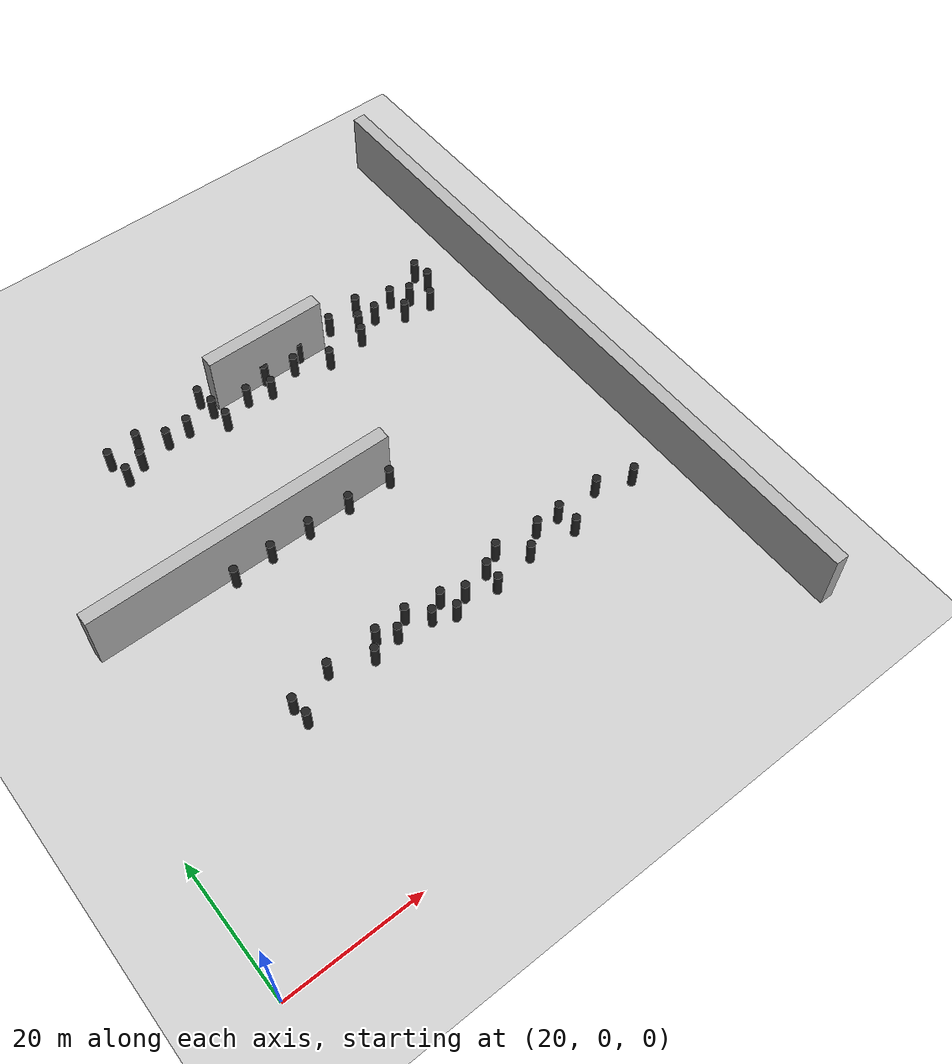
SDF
<sdf version="1.7">
 <world name="default">
  <model name="ground_plane">
   <pose>20 20 0 0 -0 0</pose>
   <static>1</static>
   <link name="link">
    <collision name="collision">
     <geometry><plane><normal>0 0 1</normal><size>200 200</size></plane></geometry>
     <surface><friction><ode><mu>100</mu><mu2>50</mu2></ode></friction></surface>
    </collision>
    <visual name="visual">
     <cast_shadows>0</cast_shadows>
     <geometry><plane><normal>0 0 1</normal><size>200 200</size></plane></geometry>
     <material>
      <script><uri>file://media/materials/scripts/gazebo.material</uri><name>Gazebo/Grey</name></script>
     </material>
    </visual>
   </link>
  </model>
  <model name="pillar_bottom_area_4">
   <static>1</static>
   <pose>57.1494 27.9983 0 0 -0 0</pose>
   <link name="link">
    <pose>0 0 2 0 -0 0</pose>
    <inertial>
     <mass>1</mass>
     <inertia><ixx>0.083</ixx><ixy>0</ixy><ixz>0</ixz><iyy>0.083</iyy><iyz>0</iyz><izz>0.083</izz></inertia>
    </inertial>
    <collision name="collision">
     <geometry><cylinder><radius>0.6</radius><length>4</length></cylinder></geometry>
    </collision>
    <visual name="visual">
     <geometry><cylinder><radius>0.6</radius><length>4</length></cylinder></geometry>
     <material>
      <script><uri>file://media/materials/scripts/gazebo.material</uri><name>Gazebo/Black</name></script>
     </material>
    </visual>
   </link>
  </model>
  <model name="pillar_bottom_area_5">
   <static>1</static>
   <pose>67.7017 27.4225 0 0 -0 0</pose>
   <link name="link">
    <pose>0 0 2 0 -0 0</pose>
    <inertial>
     <mass>1</mass>
     <inertia><ixx>0.083</ixx><ixy>0</ixy><ixz>0</ixz><iyy>0.083</iyy><iyz>0</iyz><izz>0.083</izz></inertia>
    </inertial>
    <collision name="collision">
     <geometry><cylinder><radius>0.6</radius><length>4</length></cylinder></geometry>
    </collision>
    <visual name="visual">
     <geometry><cylinder><radius>0.6</radius><length>4</length></cylinder></geometry>
     <material>
      <script><uri>file://media/materials/scripts/gazebo.material</uri><name>Gazebo/Black</name></script>
     </material>
    </visual>
   </link>
  </model>
  <model name="pillar_bottom_area_8">
   <static>1</static>
   <pose>59.5444 29.6801 0 0 -0 0</pose>
   <link name="link">
    <pose>0 0 2 0 -0 0</pose>
    <inertial>
     <mass>1</mass>
     <inertia><ixx>0.083</ixx><ixy>0</ixy><ixz>0</ixz><iyy>0.083</iyy><iyz>0</iyz><izz>0.083</izz></inertia>
    </inertial>
    <collision name="collision">
     <geometry><cylinder><radius>0.6</radius><length>4</length></cylinder></geometry>
    </collision>
    <visual name="visual">
     <geometry><cylinder><radius>0.6</radius><length>4</length></cylinder></geometry>
     <material>
      <script><uri>file://media/materials/scripts/gazebo.material</uri><name>Gazebo/Black</name></script>
     </material>
    </visual>
   </link>
  </model>
  <model name="pillar_bottom_area_12">
   <static>1</static>
   <pose>62.1408 27.3001 0 0 -0 0</pose>
   <link name="link">
    <pose>0 0 2 0 -0 0</pose>
    <inertial>
     <mass>1</mass>
     <inertia><ixx>0.083</ixx><ixy>0</ixy><ixz>0</ixz><iyy>0.083</iyy><iyz>0</iyz><izz>0.083</izz></inertia>
    </inertial>
    <collision name="collision">
     <geometry><cylinder><radius>0.6</radius><length>4</length></cylinder></geometry>
    </collision>
    <visual name="visual">
     <geometry><cylinder><radius>0.6</radius><length>4</length></cylinder></geometry>
     <material>
      <script><uri>file://media/materials/scripts/gazebo.material</uri><name>Gazebo/Black</name></script>
     </material>
    </visual>
   </link>
  </model>
  <model name="pillar_bottom_area_13">
   <static>1</static>
   <pose>65.0875 25.9205 0 0 -0 0</pose>
   <link name="link">
    <pose>0 0 2 0 -0 0</pose>
    <inertial>
     <mass>1</mass>
     <inertia><ixx>0.083</ixx><ixy>0</ixy><ixz>0</ixz><iyy>0.083</iyy><iyz>0</iyz><izz>0.083</izz></inertia>
    </inertial>
    <collision name="collision">
     <geometry><cylinder><radius>0.6</radius><length>4</length></cylinder></geometry>
    </collision>
    <visual name="visual">
     <geometry><cylinder><radius>0.6</radius><length>4</length></cylinder></geometry>
     <material>
      <script><uri>file://media/materials/scripts/gazebo.material</uri><name>Gazebo/Black</name></script>
     </material>
    </visual>
   </link>
  </model>
  <model name="pillar_bottom_area_14">
   <static>1</static>
   <pose>41.0472 28.1275 0 0 -0 0</pose>
   <link name="link">
    <pose>0 0 2 0 -0 0</pose>
    <inertial>
     <mass>1</mass>
     <inertia><ixx>0.083</ixx><ixy>0</ixy><ixz>0</ixz><iyy>0.083</iyy><iyz>0</iyz><izz>0.083</izz></inertia>
    </inertial>
    <collision name="collision">
     <geometry><cylinder><radius>0.6</radius><length>4</length></cylinder></geometry>
    </collision>
    <visual name="visual">
     <geometry><cylinder><radius>0.6</radius><length>4</length></cylinder></geometry>
     <material>
      <script><uri>file://media/materials/scripts/gazebo.material</uri><name>Gazebo/Black</name></script>
     </material>
    </visual>
   </link>
  </model>
  <model name="pillar_bottom_area_19">
   <static>1</static>
   <pose>74.7778 29.9178 0 0 -0 0</pose>
   <link name="link">
    <pose>0 0 2 0 -0 0</pose>
    <inertial>
     <mass>1</mass>
     <inertia><ixx>0.083</ixx><ixy>0</ixy><ixz>0</ixz><iyy>0.083</iyy><iyz>0</iyz><izz>0.083</izz></inertia>
    </inertial>
    <collision name="collision">
     <geometry><cylinder><radius>0.6</radius><length>4</length></cylinder></geometry>
    </collision>
    <visual name="visual">
     <geometry><cylinder><radius>0.6</radius><length>4</length></cylinder></geometry>
     <material>
      <script><uri>file://media/materials/scripts/gazebo.material</uri><name>Gazebo/Black</name></script>
     </material>
    </visual>
   </link>
  </model>
  <model name="pillar_bottom_area_22">
   <static>1</static>
   <pose>54.7502 29.4957 0 0 -0 0</pose>
   <link name="link">
    <pose>0 0 2 0 -0 0</pose>
    <inertial>
     <mass>1</mass>
     <inertia><ixx>0.083</ixx><ixy>0</ixy><ixz>0</ixz><iyy>0.083</iyy><iyz>0</iyz><izz>0.083</izz></inertia>
    </inertial>
    <collision name="collision">
     <geometry><cylinder><radius>0.6</radius><length>4</length></cylinder></geometry>
    </collision>
    <visual name="visual">
     <geometry><cylinder><radius>0.6</radius><length>4</length></cylinder></geometry>
     <material>
      <script><uri>file://media/materials/scripts/gazebo.material</uri><name>Gazebo/Black</name></script>
     </material>
    </visual>
   </link>
  </model>
  <model name="pillar_bottom_area_37">
   <static>1</static>
   <pose>78.3142 26.8641 0 0 -0 0</pose>
   <link name="link">
    <pose>0 0 2 0 -0 0</pose>
    <inertial>
     <mass>1</mass>
     <inertia><ixx>0.083</ixx><ixy>0</ixy><ixz>0</ixz><iyy>0.083</iyy><iyz>0</iyz><izz>0.083</izz></inertia>
    </inertial>
    <collision name="collision">
     <geometry><cylinder><radius>0.6</radius><length>4</length></cylinder></geometry>
    </collision>
    <visual name="visual">
     <geometry><cylinder><radius>0.6</radius><length>4</length></cylinder></geometry>
     <material>
      <script><uri>file://media/materials/scripts/gazebo.material</uri><name>Gazebo/Black</name></script>
     </material>
    </visual>
   </link>
  </model>
  <model name="pillar_bottom_area_40">
   <static>1</static>
   <pose>92.0125 29.4296 0 0 -0 0</pose>
   <link name="link">
    <pose>0 0 2 0 -0 0</pose>
    <inertial>
     <mass>1</mass>
     <inertia><ixx>0.083</ixx><ixy>0</ixy><ixz>0</ixz><iyy>0.083</iyy><iyz>0</iyz><izz>0.083</izz></inertia>
    </inertial>
    <collision name="collision">
     <geometry><cylinder><radius>0.6</radius><length>4</length></cylinder></geometry>
    </collision>
    <visual name="visual">
     <geometry><cylinder><radius>0.6</radius><length>4</length></cylinder></geometry>
     <material>
      <script><uri>file://media/materials/scripts/gazebo.material</uri><name>Gazebo/Black</name></script>
     </material>
    </visual>
   </link>
  </model>
  <model name="pillar_bottom_area_43">
   <static>1</static>
   <pose>41.3491 25.4908 0 0 -0 0</pose>
   <link name="link">
    <pose>0 0 2 0 -0 0</pose>
    <inertial>
     <mass>1</mass>
     <inertia><ixx>0.083</ixx><ixy>0</ixy><ixz>0</ixz><iyy>0.083</iyy><iyz>0</iyz><izz>0.083</izz></inertia>
    </inertial>
    <collision name="collision">
     <geometry><cylinder><radius>0.6</radius><length>4</length></cylinder></geometry>
    </collision>
    <visual name="visual">
     <geometry><cylinder><radius>0.6</radius><length>4</length></cylinder></geometry>
     <material>
      <script><uri>file://media/materials/scripts/gazebo.material</uri><name>Gazebo/Black</name></script>
     </material>
    </visual>
   </link>
  </model>
  <model name="pillar_bottom_area_63">
   <static>1</static>
   <pose>64.5591 28.748 0 0 -0 0</pose>
   <link name="link">
    <pose>0 0 2 0 -0 0</pose>
    <inertial>
     <mass>1</mass>
     <inertia><ixx>0.083</ixx><ixy>0</ixy><ixz>0</ixz><iyy>0.083</iyy><iyz>0</iyz><izz>0.083</izz></inertia>
    </inertial>
    <collision name="collision">
     <geometry><cylinder><radius>0.6</radius><length>4</length></cylinder></geometry>
    </collision>
    <visual name="visual">
     <geometry><cylinder><radius>0.6</radius><length>4</length></cylinder></geometry>
     <material>
      <script><uri>file://media/materials/scripts/gazebo.material</uri><name>Gazebo/Black</name></script>
     </material>
    </visual>
   </link>
  </model>
  <model name="pillar_bottom_area_132">
   <static>1</static>
   <pose>71.8502 25.8543 0 0 -0 0</pose>
   <link name="link">
    <pose>0 0 2 0 -0 0</pose>
    <inertial>
     <mass>1</mass>
     <inertia><ixx>0.083</ixx><ixy>0</ixy><ixz>0</ixz><iyy>0.083</iyy><iyz>0</iyz><izz>0.083</izz></inertia>
    </inertial>
    <collision name="collision">
     <geometry><cylinder><radius>0.6</radius><length>4</length></cylinder></geometry>
    </collision>
    <visual name="visual">
     <geometry><cylinder><radius>0.6</radius><length>4</length></cylinder></geometry>
     <material>
      <script><uri>file://media/materials/scripts/gazebo.material</uri><name>Gazebo/Black</name></script>
     </material>
    </visual>
   </link>
  </model>
  <model name="pillar_bottom_area_149">
   <static>1</static>
   <pose>85.2576 29.3545 0 0 -0 0</pose>
   <link name="link">
    <pose>0 0 2 0 -0 0</pose>
    <inertial>
     <mass>1</mass>
     <inertia><ixx>0.083</ixx><ixy>0</ixy><ixz>0</ixz><iyy>0.083</iyy><iyz>0</iyz><izz>0.083</izz></inertia>
    </inertial>
    <collision name="collision">
     <geometry><cylinder><radius>0.6</radius><length>4</length></cylinder></geometry>
    </collision>
    <visual name="visual">
     <geometry><cylinder><radius>0.6</radius><length>4</length></cylinder></geometry>
     <material>
      <script><uri>file://media/materials/scripts/gazebo.material</uri><name>Gazebo/Black</name></script>
     </material>
    </visual>
   </link>
  </model>
  <model name="pillar_bottom_area_152">
   <static>1</static>
   <pose>85.7271 26.3491 0 0 -0 0</pose>
   <link name="link">
    <pose>0 0 2 0 -0 0</pose>
    <inertial>
     <mass>1</mass>
     <inertia><ixx>0.083</ixx><ixy>0</ixy><ixz>0</ixz><iyy>0.083</iyy><iyz>0</iyz><izz>0.083</izz></inertia>
    </inertial>
    <collision name="collision">
     <geometry><cylinder><radius>0.6</radius><length>4</length></cylinder></geometry>
    </collision>
    <visual name="visual">
     <geometry><cylinder><radius>0.6</radius><length>4</length></cylinder></geometry>
     <material>
      <script><uri>file://media/materials/scripts/gazebo.material</uri><name>Gazebo/Black</name></script>
     </material>
    </visual>
   </link>
  </model>
  <model name="pillar_bottom_area_156">
   <static>1</static>
   <pose>72.0142 28.4259 0 0 -0 0</pose>
   <link name="link">
    <pose>0 0 2 0 -0 0</pose>
    <inertial>
     <mass>1</mass>
     <inertia><ixx>0.083</ixx><ixy>0</ixy><ixz>0</ixz><iyy>0.083</iyy><iyz>0</iyz><izz>0.083</izz></inertia>
    </inertial>
    <collision name="collision">
     <geometry><cylinder><radius>0.6</radius><length>4</length></cylinder></geometry>
    </collision>
    <visual name="visual">
     <geometry><cylinder><radius>0.6</radius><length>4</length></cylinder></geometry>
     <material>
      <script><uri>file://media/materials/scripts/gazebo.material</uri><name>Gazebo/Black</name></script>
     </material>
    </visual>
   </link>
  </model>
  <model name="pillar_bottom_area_178">
   <static>1</static>
   <pose>97.321 27.7005 0 0 -0 0</pose>
   <link name="link">
    <pose>0 0 2 0 -0 0</pose>
    <inertial>
     <mass>1</mass>
     <inertia><ixx>0.083</ixx><ixy>0</ixy><ixz>0</ixz><iyy>0.083</iyy><iyz>0</iyz><izz>0.083</izz></inertia>
    </inertial>
    <collision name="collision">
     <geometry><cylinder><radius>0.6</radius><length>4</length></cylinder></geometry>
    </collision>
    <visual name="visual">
     <geometry><cylinder><radius>0.6</radius><length>4</length></cylinder></geometry>
     <material>
      <script><uri>file://media/materials/scripts/gazebo.material</uri><name>Gazebo/Black</name></script>
     </material>
    </visual>
   </link>
  </model>
  <model name="pillar_bottom_area_192">
   <static>1</static>
   <pose>47.1785 29.3952 0 0 -0 0</pose>
   <link name="link">
    <pose>0 0 2 0 -0 0</pose>
    <inertial>
     <mass>1</mass>
     <inertia><ixx>0.083</ixx><ixy>0</ixy><ixz>0</ixz><iyy>0.083</iyy><iyz>0</iyz><izz>0.083</izz></inertia>
    </inertial>
    <collision name="collision">
     <geometry><cylinder><radius>0.6</radius><length>4</length></cylinder></geometry>
    </collision>
    <visual name="visual">
     <geometry><cylinder><radius>0.6</radius><length>4</length></cylinder></geometry>
     <material>
      <script><uri>file://media/materials/scripts/gazebo.material</uri><name>Gazebo/Black</name></script>
     </material>
    </visual>
   </link>
  </model>
  <model name="pillar_bottom_area_366">
   <static>1</static>
   <pose>81.3766 29.2702 0 0 -0 0</pose>
   <link name="link">
    <pose>0 0 2 0 -0 0</pose>
    <inertial>
     <mass>1</mass>
     <inertia><ixx>0.083</ixx><ixy>0</ixy><ixz>0</ixz><iyy>0.083</iyy><iyz>0</iyz><izz>0.083</izz></inertia>
    </inertial>
    <collision name="collision">
     <geometry><cylinder><radius>0.6</radius><length>4</length></cylinder></geometry>
    </collision>
    <visual name="visual">
     <geometry><cylinder><radius>0.6</radius><length>4</length></cylinder></geometry>
     <material>
      <script><uri>file://media/materials/scripts/gazebo.material</uri><name>Gazebo/Black</name></script>
     </material>
    </visual>
   </link>
  </model>
  <model name="pillar_bottom_area_393">
   <static>1</static>
   <pose>53.0768 27.3304 0 0 -0 0</pose>
   <link name="link">
    <pose>0 0 2 0 -0 0</pose>
    <inertial>
     <mass>1</mass>
     <inertia><ixx>0.083</ixx><ixy>0</ixy><ixz>0</ixz><iyy>0.083</iyy><iyz>0</iyz><izz>0.083</izz></inertia>
    </inertial>
    <collision name="collision">
     <geometry><cylinder><radius>0.6</radius><length>4</length></cylinder></geometry>
    </collision>
    <visual name="visual">
     <geometry><cylinder><radius>0.6</radius><length>4</length></cylinder></geometry>
     <material>
      <script><uri>file://media/materials/scripts/gazebo.material</uri><name>Gazebo/Black</name></script>
     </material>
    </visual>
   </link>
  </model>
  <model name="pillar_top_area_1">
   <static>1</static>
   <pose>62.9289 75.0617 0 0 -0 0</pose>
   <link name="link">
    <pose>0 0 2 0 -0 0</pose>
    <inertial>
     <mass>1</mass>
     <inertia><ixx>0.083</ixx><ixy>0</ixy><ixz>0</ixz><iyy>0.083</iyy><iyz>0</iyz><izz>0.083</izz></inertia>
    </inertial>
    <collision name="collision">
     <geometry><cylinder><radius>0.6</radius><length>4</length></cylinder></geometry>
    </collision>
    <visual name="visual">
     <geometry><cylinder><radius>0.6</radius><length>4</length></cylinder></geometry>
     <material>
      <script><uri>file://media/materials/scripts/gazebo.material</uri><name>Gazebo/Black</name></script>
     </material>
    </visual>
   </link>
  </model>
  <model name="pillar_top_area_3">
   <static>1</static>
   <pose>90.3147 74.2898 0 0 -0 0</pose>
   <link name="link">
    <pose>0 0 2 0 -0 0</pose>
    <inertial>
     <mass>1</mass>
     <inertia><ixx>0.083</ixx><ixy>0</ixy><ixz>0</ixz><iyy>0.083</iyy><iyz>0</iyz><izz>0.083</izz></inertia>
    </inertial>
    <collision name="collision">
     <geometry><cylinder><radius>0.6</radius><length>4</length></cylinder></geometry>
    </collision>
    <visual name="visual">
     <geometry><cylinder><radius>0.6</radius><length>4</length></cylinder></geometry>
     <material>
      <script><uri>file://media/materials/scripts/gazebo.material</uri><name>Gazebo/Black</name></script>
     </material>
    </visual>
   </link>
  </model>
  <model name="pillar_top_area_8">
   <static>1</static>
   <pose>92.9955 72.983 0 0 -0 0</pose>
   <link name="link">
    <pose>0 0 2 0 -0 0</pose>
    <inertial>
     <mass>1</mass>
     <inertia><ixx>0.083</ixx><ixy>0</ixy><ixz>0</ixz><iyy>0.083</iyy><iyz>0</iyz><izz>0.083</izz></inertia>
    </inertial>
    <collision name="collision">
     <geometry><cylinder><radius>0.6</radius><length>4</length></cylinder></geometry>
    </collision>
    <visual name="visual">
     <geometry><cylinder><radius>0.6</radius><length>4</length></cylinder></geometry>
     <material>
      <script><uri>file://media/materials/scripts/gazebo.material</uri><name>Gazebo/Black</name></script>
     </material>
    </visual>
   </link>
  </model>
  <model name="pillar_top_area_10">
   <static>1</static>
   <pose>82.592 70.9768 0 0 -0 0</pose>
   <link name="link">
    <pose>0 0 2 0 -0 0</pose>
    <inertial>
     <mass>1</mass>
     <inertia><ixx>0.083</ixx><ixy>0</ixy><ixz>0</ixz><iyy>0.083</iyy><iyz>0</iyz><izz>0.083</izz></inertia>
    </inertial>
    <collision name="collision">
     <geometry><cylinder><radius>0.6</radius><length>4</length></cylinder></geometry>
    </collision>
    <visual name="visual">
     <geometry><cylinder><radius>0.6</radius><length>4</length></cylinder></geometry>
     <material>
      <script><uri>file://media/materials/scripts/gazebo.material</uri><name>Gazebo/Black</name></script>
     </material>
    </visual>
   </link>
  </model>
  <model name="pillar_top_area_31">
   <static>1</static>
   <pose>41.952 74.3247 0 0 -0 0</pose>
   <link name="link">
    <pose>0 0 2 0 -0 0</pose>
    <inertial>
     <mass>1</mass>
     <inertia><ixx>0.083</ixx><ixy>0</ixy><ixz>0</ixz><iyy>0.083</iyy><iyz>0</iyz><izz>0.083</izz></inertia>
    </inertial>
    <collision name="collision">
     <geometry><cylinder><radius>0.6</radius><length>4</length></cylinder></geometry>
    </collision>
    <visual name="visual">
     <geometry><cylinder><radius>0.6</radius><length>4</length></cylinder></geometry>
     <material>
      <script><uri>file://media/materials/scripts/gazebo.material</uri><name>Gazebo/Black</name></script>
     </material>
    </visual>
   </link>
  </model>
  <model name="pillar_top_area_45">
   <static>1</static>
   <pose>66.6789 71.0093 0 0 -0 0</pose>
   <link name="link">
    <pose>0 0 2 0 -0 0</pose>
    <inertial>
     <mass>1</mass>
     <inertia><ixx>0.083</ixx><ixy>0</ixy><ixz>0</ixz><iyy>0.083</iyy><iyz>0</iyz><izz>0.083</izz></inertia>
    </inertial>
    <collision name="collision">
     <geometry><cylinder><radius>0.6</radius><length>4</length></cylinder></geometry>
    </collision>
    <visual name="visual">
     <geometry><cylinder><radius>0.6</radius><length>4</length></cylinder></geometry>
     <material>
      <script><uri>file://media/materials/scripts/gazebo.material</uri><name>Gazebo/Black</name></script>
     </material>
    </visual>
   </link>
  </model>
  <model name="pillar_top_area_49">
   <static>1</static>
   <pose>86.6059 73.1555 0 0 -0 0</pose>
   <link name="link">
    <pose>0 0 2 0 -0 0</pose>
    <inertial>
     <mass>1</mass>
     <inertia><ixx>0.083</ixx><ixy>0</ixy><ixz>0</ixz><iyy>0.083</iyy><iyz>0</iyz><izz>0.083</izz></inertia>
    </inertial>
    <collision name="collision">
     <geometry><cylinder><radius>0.6</radius><length>4</length></cylinder></geometry>
    </collision>
    <visual name="visual">
     <geometry><cylinder><radius>0.6</radius><length>4</length></cylinder></geometry>
     <material>
      <script><uri>file://media/materials/scripts/gazebo.material</uri><name>Gazebo/Black</name></script>
     </material>
    </visual>
   </link>
  </model>
  <model name="pillar_top_area_55">
   <static>1</static>
   <pose>46.5954 74.7679 0 0 -0 0</pose>
   <link name="link">
    <pose>0 0 2 0 -0 0</pose>
    <inertial>
     <mass>1</mass>
     <inertia><ixx>0.083</ixx><ixy>0</ixy><ixz>0</ixz><iyy>0.083</iyy><iyz>0</iyz><izz>0.083</izz></inertia>
    </inertial>
    <collision name="collision">
     <geometry><cylinder><radius>0.6</radius><length>4</length></cylinder></geometry>
    </collision>
    <visual name="visual">
     <geometry><cylinder><radius>0.6</radius><length>4</length></cylinder></geometry>
     <material>
      <script><uri>file://media/materials/scripts/gazebo.material</uri><name>Gazebo/Black</name></script>
     </material>
    </visual>
   </link>
  </model>
  <model name="pillar_top_area_60">
   <static>1</static>
   <pose>96.882 73.6087 0 0 -0 0</pose>
   <link name="link">
    <pose>0 0 2 0 -0 0</pose>
    <inertial>
     <mass>1</mass>
     <inertia><ixx>0.083</ixx><ixy>0</ixy><ixz>0</ixz><iyy>0.083</iyy><iyz>0</iyz><izz>0.083</izz></inertia>
    </inertial>
    <collision name="collision">
     <geometry><cylinder><radius>0.6</radius><length>4</length></cylinder></geometry>
    </collision>
    <visual name="visual">
     <geometry><cylinder><radius>0.6</radius><length>4</length></cylinder></geometry>
     <material>
      <script><uri>file://media/materials/scripts/gazebo.material</uri><name>Gazebo/Black</name></script>
     </material>
    </visual>
   </link>
  </model>
  <model name="pillar_top_area_62">
   <static>1</static>
   <pose>42.5903 70.574 0 0 -0 0</pose>
   <link name="link">
    <pose>0 0 2 0 -0 0</pose>
    <inertial>
     <mass>1</mass>
     <inertia><ixx>0.083</ixx><ixy>0</ixy><ixz>0</ixz><iyy>0.083</iyy><iyz>0</iyz><izz>0.083</izz></inertia>
    </inertial>
    <collision name="collision">
     <geometry><cylinder><radius>0.6</radius><length>4</length></cylinder></geometry>
    </collision>
    <visual name="visual">
     <geometry><cylinder><radius>0.6</radius><length>4</length></cylinder></geometry>
     <material>
      <script><uri>file://media/materials/scripts/gazebo.material</uri><name>Gazebo/Black</name></script>
     </material>
    </visual>
   </link>
  </model>
  <model name="pillar_top_area_68">
   <static>1</static>
   <pose>71.0495 75.7869 0 0 -0 0</pose>
   <link name="link">
    <pose>0 0 2 0 -0 0</pose>
    <inertial>
     <mass>1</mass>
     <inertia><ixx>0.083</ixx><ixy>0</ixy><ixz>0</ixz><iyy>0.083</iyy><iyz>0</iyz><izz>0.083</izz></inertia>
    </inertial>
    <collision name="collision">
     <geometry><cylinder><radius>0.6</radius><length>4</length></cylinder></geometry>
    </collision>
    <visual name="visual">
     <geometry><cylinder><radius>0.6</radius><length>4</length></cylinder></geometry>
     <material>
      <script><uri>file://media/materials/scripts/gazebo.material</uri><name>Gazebo/Black</name></script>
     </material>
    </visual>
   </link>
  </model>
  <model name="pillar_top_area_69">
   <static>1</static>
   <pose>50.1479 72.5195 0 0 -0 0</pose>
   <link name="link">
    <pose>0 0 2 0 -0 0</pose>
    <inertial>
     <mass>1</mass>
     <inertia><ixx>0.083</ixx><ixy>0</ixy><ixz>0</ixz><iyy>0.083</iyy><iyz>0</iyz><izz>0.083</izz></inertia>
    </inertial>
    <collision name="collision">
     <geometry><cylinder><radius>0.6</radius><length>4</length></cylinder></geometry>
    </collision>
    <visual name="visual">
     <geometry><cylinder><radius>0.6</radius><length>4</length></cylinder></geometry>
     <material>
      <script><uri>file://media/materials/scripts/gazebo.material</uri><name>Gazebo/Black</name></script>
     </material>
    </visual>
   </link>
  </model>
  <model name="pillar_top_area_81">
   <static>1</static>
   <pose>58.0718 73.2441 0 0 -0 0</pose>
   <link name="link">
    <pose>0 0 2 0 -0 0</pose>
    <inertial>
     <mass>1</mass>
     <inertia><ixx>0.083</ixx><ixy>0</ixy><ixz>0</ixz><iyy>0.083</iyy><iyz>0</iyz><izz>0.083</izz></inertia>
    </inertial>
    <collision name="collision">
     <geometry><cylinder><radius>0.6</radius><length>4</length></cylinder></geometry>
    </collision>
    <visual name="visual">
     <geometry><cylinder><radius>0.6</radius><length>4</length></cylinder></geometry>
     <material>
      <script><uri>file://media/materials/scripts/gazebo.material</uri><name>Gazebo/Black</name></script>
     </material>
    </visual>
   </link>
  </model>
  <model name="pillar_top_area_82">
   <static>1</static>
   <pose>71.5368 72.4441 0 0 -0 0</pose>
   <link name="link">
    <pose>0 0 2 0 -0 0</pose>
    <inertial>
     <mass>1</mass>
     <inertia><ixx>0.083</ixx><ixy>0</ixy><ixz>0</ixz><iyy>0.083</iyy><iyz>0</iyz><izz>0.083</izz></inertia>
    </inertial>
    <collision name="collision">
     <geometry><cylinder><radius>0.6</radius><length>4</length></cylinder></geometry>
    </collision>
    <visual name="visual">
     <geometry><cylinder><radius>0.6</radius><length>4</length></cylinder></geometry>
     <material>
      <script><uri>file://media/materials/scripts/gazebo.material</uri><name>Gazebo/Black</name></script>
     </material>
    </visual>
   </link>
  </model>
  <model name="pillar_top_area_91">
   <static>1</static>
   <pose>73.498 74.1207 0 0 -0 0</pose>
   <link name="link">
    <pose>0 0 2 0 -0 0</pose>
    <inertial>
     <mass>1</mass>
     <inertia><ixx>0.083</ixx><ixy>0</ixy><ixz>0</ixz><iyy>0.083</iyy><iyz>0</iyz><izz>0.083</izz></inertia>
    </inertial>
    <collision name="collision">
     <geometry><cylinder><radius>0.6</radius><length>4</length></cylinder></geometry>
    </collision>
    <visual name="visual">
     <geometry><cylinder><radius>0.6</radius><length>4</length></cylinder></geometry>
     <material>
      <script><uri>file://media/materials/scripts/gazebo.material</uri><name>Gazebo/Black</name></script>
     </material>
    </visual>
   </link>
  </model>
  <model name="pillar_top_area_112">
   <static>1</static>
   <pose>83.7453 73.3069 0 0 -0 0</pose>
   <link name="link">
    <pose>0 0 2 0 -0 0</pose>
    <inertial>
     <mass>1</mass>
     <inertia><ixx>0.083</ixx><ixy>0</ixy><ixz>0</ixz><iyy>0.083</iyy><iyz>0</iyz><izz>0.083</izz></inertia>
    </inertial>
    <collision name="collision">
     <geometry><cylinder><radius>0.6</radius><length>4</length></cylinder></geometry>
    </collision>
    <visual name="visual">
     <geometry><cylinder><radius>0.6</radius><length>4</length></cylinder></geometry>
     <material>
      <script><uri>file://media/materials/scripts/gazebo.material</uri><name>Gazebo/Black</name></script>
     </material>
    </visual>
   </link>
  </model>
  <model name="pillar_top_area_119">
   <static>1</static>
   <pose>80.002 75.5143 0 0 -0 0</pose>
   <link name="link">
    <pose>0 0 2 0 -0 0</pose>
    <inertial>
     <mass>1</mass>
     <inertia><ixx>0.083</ixx><ixy>0</ixy><ixz>0</ixz><iyy>0.083</iyy><iyz>0</iyz><izz>0.083</izz></inertia>
    </inertial>
    <collision name="collision">
     <geometry><cylinder><radius>0.6</radius><length>4</length></cylinder></geometry>
    </collision>
    <visual name="visual">
     <geometry><cylinder><radius>0.6</radius><length>4</length></cylinder></geometry>
     <material>
      <script><uri>file://media/materials/scripts/gazebo.material</uri><name>Gazebo/Black</name></script>
     </material>
    </visual>
   </link>
  </model>
  <model name="pillar_top_area_128">
   <static>1</static>
   <pose>45.4418 71.6328 0 0 -0 0</pose>
   <link name="link">
    <pose>0 0 2 0 -0 0</pose>
    <inertial>
     <mass>1</mass>
     <inertia><ixx>0.083</ixx><ixy>0</ixy><ixz>0</ixz><iyy>0.083</iyy><iyz>0</iyz><izz>0.083</izz></inertia>
    </inertial>
    <collision name="collision">
     <geometry><cylinder><radius>0.6</radius><length>4</length></cylinder></geometry>
    </collision>
    <visual name="visual">
     <geometry><cylinder><radius>0.6</radius><length>4</length></cylinder></geometry>
     <material>
      <script><uri>file://media/materials/scripts/gazebo.material</uri><name>Gazebo/Black</name></script>
     </material>
    </visual>
   </link>
  </model>
  <model name="pillar_top_area_143">
   <static>1</static>
   <pose>63.0984 71.9167 0 0 -0 0</pose>
   <link name="link">
    <pose>0 0 2 0 -0 0</pose>
    <inertial>
     <mass>1</mass>
     <inertia><ixx>0.083</ixx><ixy>0</ixy><ixz>0</ixz><iyy>0.083</iyy><iyz>0</iyz><izz>0.083</izz></inertia>
    </inertial>
    <collision name="collision">
     <geometry><cylinder><radius>0.6</radius><length>4</length></cylinder></geometry>
    </collision>
    <visual name="visual">
     <geometry><cylinder><radius>0.6</radius><length>4</length></cylinder></geometry>
     <material>
      <script><uri>file://media/materials/scripts/gazebo.material</uri><name>Gazebo/Black</name></script>
     </material>
    </visual>
   </link>
  </model>
  <model name="pillar_top_area_179">
   <static>1</static>
   <pose>85.246 76.1206 0 0 -0 0</pose>
   <link name="link">
    <pose>0 0 2 0 -0 0</pose>
    <inertial>
     <mass>1</mass>
     <inertia><ixx>0.083</ixx><ixy>0</ixy><ixz>0</ixz><iyy>0.083</iyy><iyz>0</iyz><izz>0.083</izz></inertia>
    </inertial>
    <collision name="collision">
     <geometry><cylinder><radius>0.6</radius><length>4</length></cylinder></geometry>
    </collision>
    <visual name="visual">
     <geometry><cylinder><radius>0.6</radius><length>4</length></cylinder></geometry>
     <material>
      <script><uri>file://media/materials/scripts/gazebo.material</uri><name>Gazebo/Black</name></script>
     </material>
    </visual>
   </link>
  </model>
  <model name="pillar_top_area_227">
   <static>1</static>
   <pose>58.4786 70.1385 0 0 -0 0</pose>
   <link name="link">
    <pose>0 0 2 0 -0 0</pose>
    <inertial>
     <mass>1</mass>
     <inertia><ixx>0.083</ixx><ixy>0</ixy><ixz>0</ixz><iyy>0.083</iyy><iyz>0</iyz><izz>0.083</izz></inertia>
    </inertial>
    <collision name="collision">
     <geometry><cylinder><radius>0.6</radius><length>4</length></cylinder></geometry>
    </collision>
    <visual name="visual">
     <geometry><cylinder><radius>0.6</radius><length>4</length></cylinder></geometry>
     <material>
      <script><uri>file://media/materials/scripts/gazebo.material</uri><name>Gazebo/Black</name></script>
     </material>
    </visual>
   </link>
  </model>
  <model name="pillar_top_area_228">
   <static>1</static>
   <pose>53.5376 72.5571 0 0 -0 0</pose>
   <link name="link">
    <pose>0 0 2 0 -0 0</pose>
    <inertial>
     <mass>1</mass>
     <inertia><ixx>0.083</ixx><ixy>0</ixy><ixz>0</ixz><iyy>0.083</iyy><iyz>0</iyz><izz>0.083</izz></inertia>
    </inertial>
    <collision name="collision">
     <geometry><cylinder><radius>0.6</radius><length>4</length></cylinder></geometry>
    </collision>
    <visual name="visual">
     <geometry><cylinder><radius>0.6</radius><length>4</length></cylinder></geometry>
     <material>
      <script><uri>file://media/materials/scripts/gazebo.material</uri><name>Gazebo/Black</name></script>
     </material>
    </visual>
   </link>
  </model>
  <model name="pillar_top_area_232">
   <static>1</static>
   <pose>67.2763 73.6833 0 0 -0 0</pose>
   <link name="link">
    <pose>0 0 2 0 -0 0</pose>
    <inertial>
     <mass>1</mass>
     <inertia><ixx>0.083</ixx><ixy>0</ixy><ixz>0</ixz><iyy>0.083</iyy><iyz>0</iyz><izz>0.083</izz></inertia>
    </inertial>
    <collision name="collision">
     <geometry><cylinder><radius>0.6</radius><length>4</length></cylinder></geometry>
    </collision>
    <visual name="visual">
     <geometry><cylinder><radius>0.6</radius><length>4</length></cylinder></geometry>
     <material>
      <script><uri>file://media/materials/scripts/gazebo.material</uri><name>Gazebo/Black</name></script>
     </material>
    </visual>
   </link>
  </model>
  <model name="pillar_top_area_318">
   <static>1</static>
   <pose>57.5137 75.9527 0 0 -0 0</pose>
   <link name="link">
    <pose>0 0 2 0 -0 0</pose>
    <inertial>
     <mass>1</mass>
     <inertia><ixx>0.083</ixx><ixy>0</ixy><ixz>0</ixz><iyy>0.083</iyy><iyz>0</iyz><izz>0.083</izz></inertia>
    </inertial>
    <collision name="collision">
     <geometry><cylinder><radius>0.6</radius><length>4</length></cylinder></geometry>
    </collision>
    <visual name="visual">
     <geometry><cylinder><radius>0.6</radius><length>4</length></cylinder></geometry>
     <material>
      <script><uri>file://media/materials/scripts/gazebo.material</uri><name>Gazebo/Black</name></script>
     </material>
    </visual>
   </link>
  </model>
  <model name="pillar_top_area_328">
   <static>1</static>
   <pose>96.4341 76.2415 0 0 -0 0</pose>
   <link name="link">
    <pose>0 0 2 0 -0 0</pose>
    <inertial>
     <mass>1</mass>
     <inertia><ixx>0.083</ixx><ixy>0</ixy><ixz>0</ixz><iyy>0.083</iyy><iyz>0</iyz><izz>0.083</izz></inertia>
    </inertial>
    <collision name="collision">
     <geometry><cylinder><radius>0.6</radius><length>4</length></cylinder></geometry>
    </collision>
    <visual name="visual">
     <geometry><cylinder><radius>0.6</radius><length>4</length></cylinder></geometry>
     <material>
      <script><uri>file://media/materials/scripts/gazebo.material</uri><name>Gazebo/Black</name></script>
     </material>
    </visual>
   </link>
  </model>
  <model name="pillar_top_area_356">
   <static>1</static>
   <pose>76.4129 70.2861 0 0 -0 0</pose>
   <link name="link">
    <pose>0 0 2 0 -0 0</pose>
    <inertial>
     <mass>1</mass>
     <inertia><ixx>0.083</ixx><ixy>0</ixy><ixz>0</ixz><iyy>0.083</iyy><iyz>0</iyz><izz>0.083</izz></inertia>
    </inertial>
    <collision name="collision">
     <geometry><cylinder><radius>0.6</radius><length>4</length></cylinder></geometry>
    </collision>
    <visual name="visual">
     <geometry><cylinder><radius>0.6</radius><length>4</length></cylinder></geometry>
     <material>
      <script><uri>file://media/materials/scripts/gazebo.material</uri><name>Gazebo/Black</name></script>
     </material>
    </visual>
   </link>
  </model>
  <model name="pillar_top_area_376">
   <static>1</static>
   <pose>90.4559 70.8229 0 0 -0 0</pose>
   <link name="link">
    <pose>0 0 2 0 -0 0</pose>
    <inertial>
     <mass>1</mass>
     <inertia><ixx>0.083</ixx><ixy>0</ixy><ixz>0</ixz><iyy>0.083</iyy><iyz>0</iyz><izz>0.083</izz></inertia>
    </inertial>
    <collision name="collision">
     <geometry><cylinder><radius>0.6</radius><length>4</length></cylinder></geometry>
    </collision>
    <visual name="visual">
     <geometry><cylinder><radius>0.6</radius><length>4</length></cylinder></geometry>
     <material>
      <script><uri>file://media/materials/scripts/gazebo.material</uri><name>Gazebo/Black</name></script>
     </material>
    </visual>
   </link>
  </model>
  <model name="pillar_top_area_392">
   <static>1</static>
   <pose>94.8839 70.3471 0 0 -0 0</pose>
   <link name="link">
    <pose>0 0 2 0 -0 0</pose>
    <inertial>
     <mass>1</mass>
     <inertia><ixx>0.083</ixx><ixy>0</ixy><ixz>0</ixz><iyy>0.083</iyy><iyz>0</iyz><izz>0.083</izz></inertia>
    </inertial>
    <collision name="collision">
     <geometry><cylinder><radius>0.6</radius><length>4</length></cylinder></geometry>
    </collision>
    <visual name="visual">
     <geometry><cylinder><radius>0.6</radius><length>4</length></cylinder></geometry>
     <material>
      <script><uri>file://media/materials/scripts/gazebo.material</uri><name>Gazebo/Black</name></script>
     </material>
    </visual>
   </link>
  </model>
  <model name="center_wall_clone_0_clone_6">
   <static>1</static>
   <pose>68.5153 74.7409 5.00499 0 -0 0</pose>
   <link name="link">
    <collision name="collision"><geometry><box><size>18.5054 2 10</size></box></geometry></collision>
    <visual name="visual">
     <geometry><box><size>18.5054 2 10</size></box></geometry>
     <material>
      <ambient>0.6 0.6 0.6 1</ambient>
      <diffuse>0.7 0.7 0.7 1</diffuse>
      <specular>0.2 0.2 0.2 1</specular>
     </material>
    </visual>
   </link>
  </model>
  <model name="pillar_top_area_62_clone_2">
   <static>1</static>
   <pose>45.6246 51.7342 0 0 -0 0</pose>
   <link name="link">
    <pose>0 0 2 0 -0 0</pose>
    <inertial>
     <mass>1</mass>
     <inertia><ixx>0.083</ixx><ixy>0</ixy><ixz>0</ixz><iyy>0.083</iyy><iyz>0</iyz><izz>0.083</izz></inertia>
    </inertial>
    <collision name="collision">
     <geometry><cylinder><radius>0.6</radius><length>4</length></cylinder></geometry>
    </collision>
    <visual name="visual">
     <geometry><cylinder><radius>0.6</radius><length>4</length></cylinder></geometry>
     <material>
      <script><uri>file://media/materials/scripts/gazebo.material</uri><name>Gazebo/Black</name></script>
     </material>
    </visual>
   </link>
  </model>
  <model name="pillar_top_area_62_clone_3">
   <static>1</static>
   <pose>51.3603 51.6309 0 0 -0 0</pose>
   <link name="link">
    <pose>0 0 2 0 -0 0</pose>
    <inertial>
     <mass>1</mass>
     <inertia><ixx>0.083</ixx><ixy>0</ixy><ixz>0</ixz><iyy>0.083</iyy><iyz>0</iyz><izz>0.083</izz></inertia>
    </inertial>
    <collision name="collision">
     <geometry><cylinder><radius>0.6</radius><length>4</length></cylinder></geometry>
    </collision>
    <visual name="visual">
     <geometry><cylinder><radius>0.6</radius><length>4</length></cylinder></geometry>
     <material>
      <script><uri>file://media/materials/scripts/gazebo.material</uri><name>Gazebo/Black</name></script>
     </material>
    </visual>
   </link>
  </model>
  <model name="pillar_top_area_62_clone_4">
   <static>1</static>
   <pose>57.1779 51.6293 0 0 -0 0</pose>
   <link name="link">
    <pose>0 0 2 0 -0 0</pose>
    <inertial>
     <mass>1</mass>
     <inertia><ixx>0.083</ixx><ixy>0</ixy><ixz>0</ixz><iyy>0.083</iyy><iyz>0</iyz><izz>0.083</izz></inertia>
    </inertial>
    <collision name="collision">
     <geometry><cylinder><radius>0.6</radius><length>4</length></cylinder></geometry>
    </collision>
    <visual name="visual">
     <geometry><cylinder><radius>0.6</radius><length>4</length></cylinder></geometry>
     <material>
      <script><uri>file://media/materials/scripts/gazebo.material</uri><name>Gazebo/Black</name></script>
     </material>
    </visual>
   </link>
  </model>
  <model name="pillar_top_area_62_clone_5">
   <static>1</static>
   <pose>63.6592 51.8453 0 0 -0 0</pose>
   <link name="link">
    <pose>0 0 2 0 -0 0</pose>
    <inertial>
     <mass>1</mass>
     <inertia><ixx>0.083</ixx><ixy>0</ixy><ixz>0</ixz><iyy>0.083</iyy><iyz>0</iyz><izz>0.083</izz></inertia>
    </inertial>
    <collision name="collision">
     <geometry><cylinder><radius>0.6</radius><length>4</length></cylinder></geometry>
    </collision>
    <visual name="visual">
     <geometry><cylinder><radius>0.6</radius><length>4</length></cylinder></geometry>
     <material>
      <script><uri>file://media/materials/scripts/gazebo.material</uri><name>Gazebo/Black</name></script>
     </material>
    </visual>
   </link>
  </model>
  <model name="pillar_top_area_62_clone_6">
   <static>1</static>
   <pose>70.6776 51.6288 0 0 -0 0</pose>
   <link name="link">
    <pose>0 0 2 0 -0 0</pose>
    <inertial>
     <mass>1</mass>
     <inertia><ixx>0.083</ixx><ixy>0</ixy><ixz>0</ixz><iyy>0.083</iyy><iyz>0</iyz><izz>0.083</izz></inertia>
    </inertial>
    <collision name="collision">
     <geometry><cylinder><radius>0.6</radius><length>4</length></cylinder></geometry>
    </collision>
    <visual name="visual">
     <geometry><cylinder><radius>0.6</radius><length>4</length></cylinder></geometry>
     <material>
      <script><uri>file://media/materials/scripts/gazebo.material</uri><name>Gazebo/Black</name></script>
     </material>
    </visual>
   </link>
  </model>
  <model name="pillar_top_area_62_clone_11">
   <static>1</static>
   <pose>45.3921 47.8863 0 0 -0 0</pose>
   <link name="link">
    <pose>0 0 2 0 -0 0</pose>
    <inertial>
     <mass>1</mass>
     <inertia><ixx>0.083</ixx><ixy>0</ixy><ixz>0</ixz><iyy>0.083</iyy><iyz>0</iyz><izz>0.083</izz></inertia>
    </inertial>
    <collision name="collision">
     <geometry><cylinder><radius>0.6</radius><length>4</length></cylinder></geometry>
    </collision>
    <visual name="visual">
     <geometry><cylinder><radius>0.6</radius><length>4</length></cylinder></geometry>
     <material>
      <script><uri>file://media/materials/scripts/gazebo.material</uri><name>Gazebo/Black</name></script>
     </material>
    </visual>
   </link>
  </model>
  <model name="pillar_top_area_62_clone_12">
   <static>1</static>
   <pose>51.242 48.0556 0 0 -0 0</pose>
   <link name="link">
    <pose>0 0 2 0 -0 0</pose>
    <inertial>
     <mass>1</mass>
     <inertia><ixx>0.083</ixx><ixy>0</ixy><ixz>0</ixz><iyy>0.083</iyy><iyz>0</iyz><izz>0.083</izz></inertia>
    </inertial>
    <collision name="collision">
     <geometry><cylinder><radius>0.6</radius><length>4</length></cylinder></geometry>
    </collision>
    <visual name="visual">
     <geometry><cylinder><radius>0.6</radius><length>4</length></cylinder></geometry>
     <material>
      <script><uri>file://media/materials/scripts/gazebo.material</uri><name>Gazebo/Black</name></script>
     </material>
    </visual>
   </link>
  </model>
  <model name="pillar_top_area_62_clone_13">
   <static>1</static>
   <pose>57.3252 48.0827 0 0 -0 0</pose>
   <link name="link">
    <pose>0 0 2 0 -0 0</pose>
    <inertial>
     <mass>1</mass>
     <inertia><ixx>0.083</ixx><ixy>0</ixy><ixz>0</ixz><iyy>0.083</iyy><iyz>0</iyz><izz>0.083</izz></inertia>
    </inertial>
    <collision name="collision">
     <geometry><cylinder><radius>0.6</radius><length>4</length></cylinder></geometry>
    </collision>
    <visual name="visual">
     <geometry><cylinder><radius>0.6</radius><length>4</length></cylinder></geometry>
     <material>
      <script><uri>file://media/materials/scripts/gazebo.material</uri><name>Gazebo/Black</name></script>
     </material>
    </visual>
   </link>
  </model>
  <model name="pillar_top_area_62_clone_14">
   <static>1</static>
   <pose>63.8336 48.0546 0 0 -0 0</pose>
   <link name="link">
    <pose>0 0 2 0 -0 0</pose>
    <inertial>
     <mass>1</mass>
     <inertia><ixx>0.083</ixx><ixy>0</ixy><ixz>0</ixz><iyy>0.083</iyy><iyz>0</iyz><izz>0.083</izz></inertia>
    </inertial>
    <collision name="collision">
     <geometry><cylinder><radius>0.6</radius><length>4</length></cylinder></geometry>
    </collision>
    <visual name="visual">
     <geometry><cylinder><radius>0.6</radius><length>4</length></cylinder></geometry>
     <material>
      <script><uri>file://media/materials/scripts/gazebo.material</uri><name>Gazebo/Black</name></script>
     </material>
    </visual>
   </link>
  </model>
  <model name="pillar_top_area_62_clone_15">
   <static>1</static>
   <pose>70.7363 48.0424 0 0 -0 0</pose>
   <link name="link">
    <pose>0 0 2 0 -0 0</pose>
    <inertial>
     <mass>1</mass>
     <inertia><ixx>0.083</ixx><ixy>0</ixy><ixz>0</ixz><iyy>0.083</iyy><iyz>0</iyz><izz>0.083</izz></inertia>
    </inertial>
    <collision name="collision">
     <geometry><cylinder><radius>0.6</radius><length>4</length></cylinder></geometry>
    </collision>
    <visual name="visual">
     <geometry><cylinder><radius>0.6</radius><length>4</length></cylinder></geometry>
     <material>
      <script><uri>file://media/materials/scripts/gazebo.material</uri><name>Gazebo/Black</name></script>
     </material>
    </visual>
   </link>
  </model>
  <model name="center_wall_clone_0_clone_1_clone_clone">
   <static>1</static>
   <pose>48.4973 49.8495 5.00499 0 -0 0</pose>
   <link name="link">
    <collision name="collision"><geometry><box><size>45.9978 2 10</size></box></geometry></collision>
    <visual name="visual">
     <geometry><box><size>45.9978 2 10</size></box></geometry>
     <material>
      <ambient>0.6 0.6 0.6 1</ambient>
      <diffuse>0.7 0.7 0.7 1</diffuse>
      <specular>0.2 0.2 0.2 1</specular>
     </material>
    </visual>
   </link>
  </model>
  <model name="center_wall_clone_clone_clone_clone_clone">
   <static>1</static>
   <pose>105 50 5.00499 0 -0 1.5707</pose>
   <link name="link">
    <collision name="collision"><geometry><box><size>103.653 2 10</size></box></geometry></collision>
    <visual name="visual">
     <geometry><box><size>103.653 2 10</size></box></geometry>
     <material>
      <ambient>0.6 0.6 0.6 1</ambient>
      <diffuse>0.7 0.7 0.7 1</diffuse>
      <specular>0.2 0.2 0.2 1</specular>
     </material>
    </visual>
   </link>
  </model>
 </world>
</sdf>
